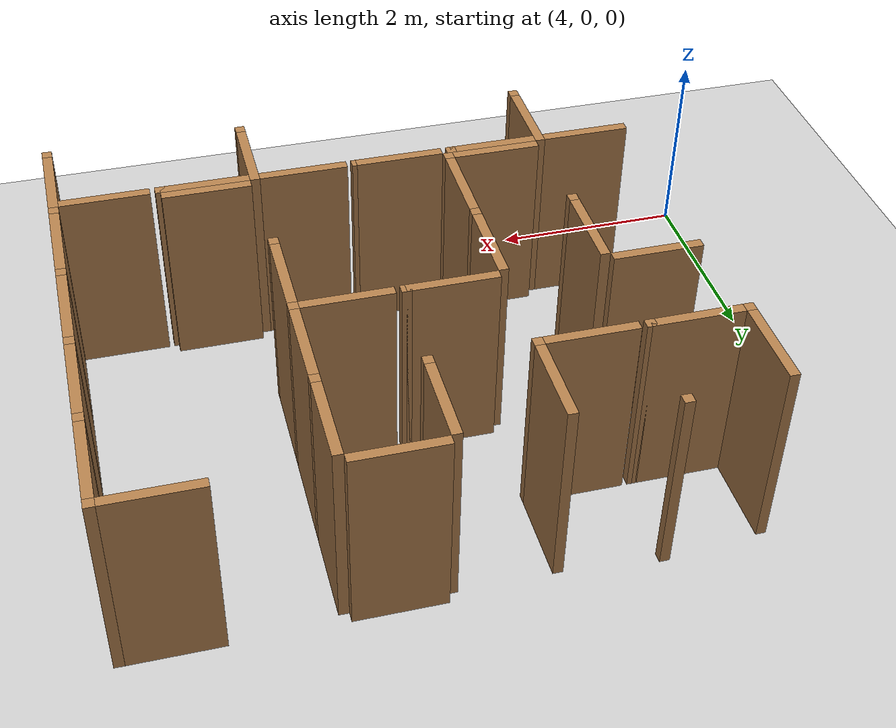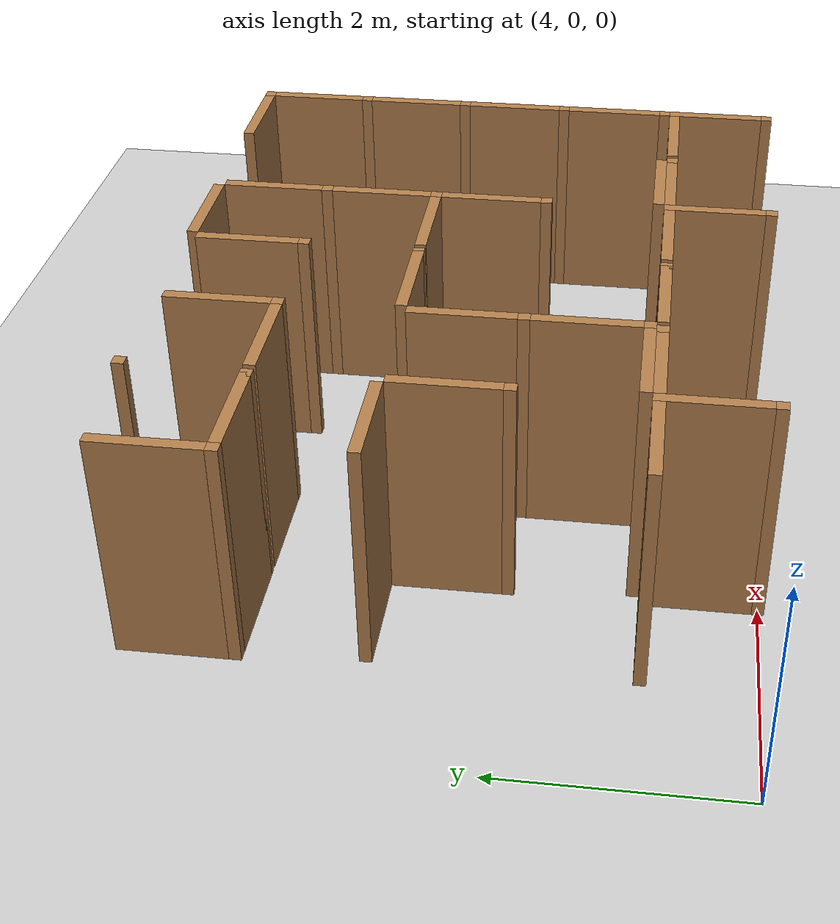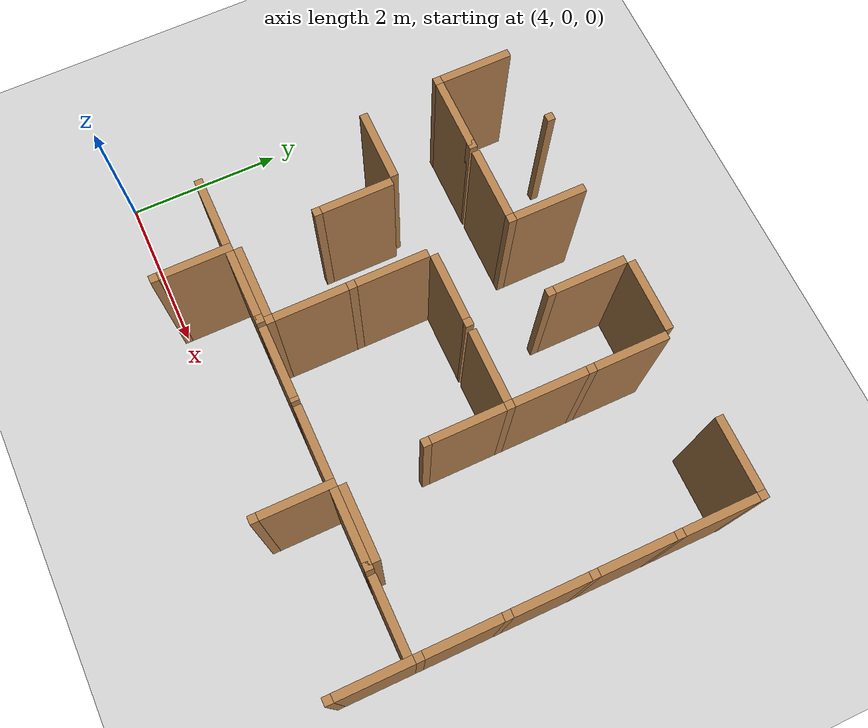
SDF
<sdf version="1.6">
 <world name="default">
  <include><uri>model://sun</uri></include>
  <model name="ground_plane">
   <static>true</static>
   <link name="link">
    <collision name="collision"><geometry><plane><size>12.0 12.0</size></plane></geometry></collision>
    <visual name="visual">
     <cast_shadows>false</cast_shadows>
     <geometry><plane><size>12.0 12.0</size></plane></geometry>
     <material>
      <script><uri>file://media/materials/scripts/gazebo.material</uri><name>Gazebo/Grey</name></script>
     </material>
    </visual>
   </link>
   <pose>6.0 6.0 0 0 0 0</pose>
  </model>
  <model name="vwall_0_6">
   <pose>6.0 0.5 1.0 0 0 0</pose>
   <link name="link">
    <collision name="collision"><geometry><box><size>0.1 0.9 2</size></box></geometry></collision>
    <visual name="visual">
     <geometry><box><size>0.1 0.9 2</size></box></geometry>
     <material>
      <script><uri>file://media/materials/scripts/gazebo.material</uri><name>Gazebo/Wood</name></script>
     </material>
    </visual>
   </link>
  </model>
  <model name="joint_6.0_0.0">
   <pose>6.0 0.0 1.0 0 0 0</pose>
   <link name="link">
    <collision name="collision"><geometry><box><size>0.1 0.1 2</size></box></geometry></collision>
    <visual name="visual">
     <geometry><box><size>0.1 0.1 2</size></box></geometry>
     <material>
      <script><uri>file://media/materials/scripts/gazebo.material</uri><name>Gazebo/Wood</name></script>
     </material>
    </visual>
   </link>
  </model>
  <model name="vwall_0_9">
   <pose>9.0 0.5 1.0 0 0 0</pose>
   <link name="link">
    <collision name="collision"><geometry><box><size>0.1 0.9 2</size></box></geometry></collision>
    <visual name="visual">
     <geometry><box><size>0.1 0.9 2</size></box></geometry>
     <material>
      <script><uri>file://media/materials/scripts/gazebo.material</uri><name>Gazebo/Wood</name></script>
     </material>
    </visual>
   </link>
  </model>
  <model name="joint_9.0_0.0">
   <pose>9.0 0.0 1.0 0 0 0</pose>
   <link name="link">
    <collision name="collision"><geometry><box><size>0.1 0.1 2</size></box></geometry></collision>
    <visual name="visual">
     <geometry><box><size>0.1 0.1 2</size></box></geometry>
     <material>
      <script><uri>file://media/materials/scripts/gazebo.material</uri><name>Gazebo/Wood</name></script>
     </material>
    </visual>
   </link>
  </model>
  <model name="vwall_0_11">
   <pose>11.0 0.5 1.0 0 0 0</pose>
   <link name="link">
    <collision name="collision"><geometry><box><size>0.1 0.9 2</size></box></geometry></collision>
    <visual name="visual">
     <geometry><box><size>0.1 0.9 2</size></box></geometry>
     <material>
      <script><uri>file://media/materials/scripts/gazebo.material</uri><name>Gazebo/Wood</name></script>
     </material>
    </visual>
   </link>
  </model>
  <model name="joint_11.0_0.0">
   <pose>11.0 0.0 1.0 0 0 0</pose>
   <link name="link">
    <collision name="collision"><geometry><box><size>0.1 0.1 2</size></box></geometry></collision>
    <visual name="visual">
     <geometry><box><size>0.1 0.1 2</size></box></geometry>
     <material>
      <script><uri>file://media/materials/scripts/gazebo.material</uri><name>Gazebo/Wood</name></script>
     </material>
    </visual>
   </link>
  </model>
  <model name="vwall_1_7">
   <pose>7.0 1.5 1.0 0 0 0</pose>
   <link name="link">
    <collision name="collision"><geometry><box><size>0.1 0.9 2</size></box></geometry></collision>
    <visual name="visual">
     <geometry><box><size>0.1 0.9 2</size></box></geometry>
     <material>
      <script><uri>file://media/materials/scripts/gazebo.material</uri><name>Gazebo/Wood</name></script>
     </material>
    </visual>
   </link>
  </model>
  <model name="joint_7.0_1.0">
   <pose>7.0 1.0 1.0 0 0 0</pose>
   <link name="link">
    <collision name="collision"><geometry><box><size>0.1 0.1 2</size></box></geometry></collision>
    <visual name="visual">
     <geometry><box><size>0.1 0.1 2</size></box></geometry>
     <material>
      <script><uri>file://media/materials/scripts/gazebo.material</uri><name>Gazebo/Wood</name></script>
     </material>
    </visual>
   </link>
  </model>
  <model name="vwall_1_11">
   <pose>11.0 1.5 1.0 0 0 0</pose>
   <link name="link">
    <collision name="collision"><geometry><box><size>0.1 0.9 2</size></box></geometry></collision>
    <visual name="visual">
     <geometry><box><size>0.1 0.9 2</size></box></geometry>
     <material>
      <script><uri>file://media/materials/scripts/gazebo.material</uri><name>Gazebo/Wood</name></script>
     </material>
    </visual>
   </link>
  </model>
  <model name="joint_11.0_1.0">
   <pose>11.0 1.0 1.0 0 0 0</pose>
   <link name="link">
    <collision name="collision"><geometry><box><size>0.1 0.1 2</size></box></geometry></collision>
    <visual name="visual">
     <geometry><box><size>0.1 0.1 2</size></box></geometry>
     <material>
      <script><uri>file://media/materials/scripts/gazebo.material</uri><name>Gazebo/Wood</name></script>
     </material>
    </visual>
   </link>
  </model>
  <model name="vwall_2_6">
   <pose>6.0 2.5 1.0 0 0 0</pose>
   <link name="link">
    <collision name="collision"><geometry><box><size>0.1 0.9 2</size></box></geometry></collision>
    <visual name="visual">
     <geometry><box><size>0.1 0.9 2</size></box></geometry>
     <material>
      <script><uri>file://media/materials/scripts/gazebo.material</uri><name>Gazebo/Wood</name></script>
     </material>
    </visual>
   </link>
  </model>
  <model name="joint_6.0_2.0">
   <pose>6.0 2.0 1.0 0 0 0</pose>
   <link name="link">
    <collision name="collision"><geometry><box><size>0.1 0.1 2</size></box></geometry></collision>
    <visual name="visual">
     <geometry><box><size>0.1 0.1 2</size></box></geometry>
     <material>
      <script><uri>file://media/materials/scripts/gazebo.material</uri><name>Gazebo/Wood</name></script>
     </material>
    </visual>
   </link>
  </model>
  <model name="vwall_2_7">
   <pose>7.0 2.5 1.0 0 0 0</pose>
   <link name="link">
    <collision name="collision"><geometry><box><size>0.1 0.9 2</size></box></geometry></collision>
    <visual name="visual">
     <geometry><box><size>0.1 0.9 2</size></box></geometry>
     <material>
      <script><uri>file://media/materials/scripts/gazebo.material</uri><name>Gazebo/Wood</name></script>
     </material>
    </visual>
   </link>
  </model>
  <model name="joint_7.0_2.0">
   <pose>7.0 2.0 1.0 0 0 0</pose>
   <link name="link">
    <collision name="collision"><geometry><box><size>0.1 0.1 2</size></box></geometry></collision>
    <visual name="visual">
     <geometry><box><size>0.1 0.1 2</size></box></geometry>
     <material>
      <script><uri>file://media/materials/scripts/gazebo.material</uri><name>Gazebo/Wood</name></script>
     </material>
    </visual>
   </link>
  </model>
  <model name="vwall_2_9">
   <pose>9.0 2.5 1.0 0 0 0</pose>
   <link name="link">
    <collision name="collision"><geometry><box><size>0.1 0.9 2</size></box></geometry></collision>
    <visual name="visual">
     <geometry><box><size>0.1 0.9 2</size></box></geometry>
     <material>
      <script><uri>file://media/materials/scripts/gazebo.material</uri><name>Gazebo/Wood</name></script>
     </material>
    </visual>
   </link>
  </model>
  <model name="joint_9.0_2.0">
   <pose>9.0 2.0 1.0 0 0 0</pose>
   <link name="link">
    <collision name="collision"><geometry><box><size>0.1 0.1 2</size></box></geometry></collision>
    <visual name="visual">
     <geometry><box><size>0.1 0.1 2</size></box></geometry>
     <material>
      <script><uri>file://media/materials/scripts/gazebo.material</uri><name>Gazebo/Wood</name></script>
     </material>
    </visual>
   </link>
  </model>
  <model name="vwall_2_11">
   <pose>11.0 2.5 1.0 0 0 0</pose>
   <link name="link">
    <collision name="collision"><geometry><box><size>0.1 0.9 2</size></box></geometry></collision>
    <visual name="visual">
     <geometry><box><size>0.1 0.9 2</size></box></geometry>
     <material>
      <script><uri>file://media/materials/scripts/gazebo.material</uri><name>Gazebo/Wood</name></script>
     </material>
    </visual>
   </link>
  </model>
  <model name="joint_11.0_2.0">
   <pose>11.0 2.0 1.0 0 0 0</pose>
   <link name="link">
    <collision name="collision"><geometry><box><size>0.1 0.1 2</size></box></geometry></collision>
    <visual name="visual">
     <geometry><box><size>0.1 0.1 2</size></box></geometry>
     <material>
      <script><uri>file://media/materials/scripts/gazebo.material</uri><name>Gazebo/Wood</name></script>
     </material>
    </visual>
   </link>
  </model>
  <model name="vwall_3_9">
   <pose>9.0 3.5 1.0 0 0 0</pose>
   <link name="link">
    <collision name="collision"><geometry><box><size>0.1 0.9 2</size></box></geometry></collision>
    <visual name="visual">
     <geometry><box><size>0.1 0.9 2</size></box></geometry>
     <material>
      <script><uri>file://media/materials/scripts/gazebo.material</uri><name>Gazebo/Wood</name></script>
     </material>
    </visual>
   </link>
  </model>
  <model name="joint_9.0_3.0">
   <pose>9.0 3.0 1.0 0 0 0</pose>
   <link name="link">
    <collision name="collision"><geometry><box><size>0.1 0.1 2</size></box></geometry></collision>
    <visual name="visual">
     <geometry><box><size>0.1 0.1 2</size></box></geometry>
     <material>
      <script><uri>file://media/materials/scripts/gazebo.material</uri><name>Gazebo/Wood</name></script>
     </material>
    </visual>
   </link>
  </model>
  <model name="vwall_3_11">
   <pose>11.0 3.5 1.0 0 0 0</pose>
   <link name="link">
    <collision name="collision"><geometry><box><size>0.1 0.9 2</size></box></geometry></collision>
    <visual name="visual">
     <geometry><box><size>0.1 0.9 2</size></box></geometry>
     <material>
      <script><uri>file://media/materials/scripts/gazebo.material</uri><name>Gazebo/Wood</name></script>
     </material>
    </visual>
   </link>
  </model>
  <model name="joint_11.0_3.0">
   <pose>11.0 3.0 1.0 0 0 0</pose>
   <link name="link">
    <collision name="collision"><geometry><box><size>0.1 0.1 2</size></box></geometry></collision>
    <visual name="visual">
     <geometry><box><size>0.1 0.1 2</size></box></geometry>
     <material>
      <script><uri>file://media/materials/scripts/gazebo.material</uri><name>Gazebo/Wood</name></script>
     </material>
    </visual>
   </link>
  </model>
  <model name="vwall_4_5">
   <pose>5.0 4.5 1.0 0 0 0</pose>
   <link name="link">
    <collision name="collision"><geometry><box><size>0.1 0.9 2</size></box></geometry></collision>
    <visual name="visual">
     <geometry><box><size>0.1 0.9 2</size></box></geometry>
     <material>
      <script><uri>file://media/materials/scripts/gazebo.material</uri><name>Gazebo/Wood</name></script>
     </material>
    </visual>
   </link>
  </model>
  <model name="joint_5.0_4.0">
   <pose>5.0 4.0 1.0 0 0 0</pose>
   <link name="link">
    <collision name="collision"><geometry><box><size>0.1 0.1 2</size></box></geometry></collision>
    <visual name="visual">
     <geometry><box><size>0.1 0.1 2</size></box></geometry>
     <material>
      <script><uri>file://media/materials/scripts/gazebo.material</uri><name>Gazebo/Wood</name></script>
     </material>
    </visual>
   </link>
  </model>
  <model name="vwall_4_7">
   <pose>7.0 4.5 1.0 0 0 0</pose>
   <link name="link">
    <collision name="collision"><geometry><box><size>0.1 0.9 2</size></box></geometry></collision>
    <visual name="visual">
     <geometry><box><size>0.1 0.9 2</size></box></geometry>
     <material>
      <script><uri>file://media/materials/scripts/gazebo.material</uri><name>Gazebo/Wood</name></script>
     </material>
    </visual>
   </link>
  </model>
  <model name="joint_7.0_4.0">
   <pose>7.0 4.0 1.0 0 0 0</pose>
   <link name="link">
    <collision name="collision"><geometry><box><size>0.1 0.1 2</size></box></geometry></collision>
    <visual name="visual">
     <geometry><box><size>0.1 0.1 2</size></box></geometry>
     <material>
      <script><uri>file://media/materials/scripts/gazebo.material</uri><name>Gazebo/Wood</name></script>
     </material>
    </visual>
   </link>
  </model>
  <model name="vwall_4_8">
   <pose>8.0 4.5 1.0 0 0 0</pose>
   <link name="link">
    <collision name="collision"><geometry><box><size>0.1 0.9 2</size></box></geometry></collision>
    <visual name="visual">
     <geometry><box><size>0.1 0.9 2</size></box></geometry>
     <material>
      <script><uri>file://media/materials/scripts/gazebo.material</uri><name>Gazebo/Wood</name></script>
     </material>
    </visual>
   </link>
  </model>
  <model name="joint_8.0_4.0">
   <pose>8.0 4.0 1.0 0 0 0</pose>
   <link name="link">
    <collision name="collision"><geometry><box><size>0.1 0.1 2</size></box></geometry></collision>
    <visual name="visual">
     <geometry><box><size>0.1 0.1 2</size></box></geometry>
     <material>
      <script><uri>file://media/materials/scripts/gazebo.material</uri><name>Gazebo/Wood</name></script>
     </material>
    </visual>
   </link>
  </model>
  <model name="vwall_4_9">
   <pose>9.0 4.5 1.0 0 0 0</pose>
   <link name="link">
    <collision name="collision"><geometry><box><size>0.1 0.9 2</size></box></geometry></collision>
    <visual name="visual">
     <geometry><box><size>0.1 0.9 2</size></box></geometry>
     <material>
      <script><uri>file://media/materials/scripts/gazebo.material</uri><name>Gazebo/Wood</name></script>
     </material>
    </visual>
   </link>
  </model>
  <model name="joint_9.0_4.0">
   <pose>9.0 4.0 1.0 0 0 0</pose>
   <link name="link">
    <collision name="collision"><geometry><box><size>0.1 0.1 2</size></box></geometry></collision>
    <visual name="visual">
     <geometry><box><size>0.1 0.1 2</size></box></geometry>
     <material>
      <script><uri>file://media/materials/scripts/gazebo.material</uri><name>Gazebo/Wood</name></script>
     </material>
    </visual>
   </link>
  </model>
  <model name="vwall_4_11">
   <pose>11.0 4.5 1.0 0 0 0</pose>
   <link name="link">
    <collision name="collision"><geometry><box><size>0.1 0.9 2</size></box></geometry></collision>
    <visual name="visual">
     <geometry><box><size>0.1 0.9 2</size></box></geometry>
     <material>
      <script><uri>file://media/materials/scripts/gazebo.material</uri><name>Gazebo/Wood</name></script>
     </material>
    </visual>
   </link>
  </model>
  <model name="joint_11.0_4.0">
   <pose>11.0 4.0 1.0 0 0 0</pose>
   <link name="link">
    <collision name="collision"><geometry><box><size>0.1 0.1 2</size></box></geometry></collision>
    <visual name="visual">
     <geometry><box><size>0.1 0.1 2</size></box></geometry>
     <material>
      <script><uri>file://media/materials/scripts/gazebo.material</uri><name>Gazebo/Wood</name></script>
     </material>
    </visual>
   </link>
  </model>
  <model name="joint_6.0_5.0">
   <pose>6.0 5.0 1.0 0 0 0</pose>
   <link name="link">
    <collision name="collision"><geometry><box><size>0.1 0.1 2</size></box></geometry></collision>
    <visual name="visual">
     <geometry><box><size>0.1 0.1 2</size></box></geometry>
     <material>
      <script><uri>file://media/materials/scripts/gazebo.material</uri><name>Gazebo/Wood</name></script>
     </material>
    </visual>
   </link>
  </model>
  <model name="joint_11.0_5.0">
   <pose>11.0 5.0 1.0 0 0 0</pose>
   <link name="link">
    <collision name="collision"><geometry><box><size>0.1 0.1 2</size></box></geometry></collision>
    <visual name="visual">
     <geometry><box><size>0.1 0.1 2</size></box></geometry>
     <material>
      <script><uri>file://media/materials/scripts/gazebo.material</uri><name>Gazebo/Wood</name></script>
     </material>
    </visual>
   </link>
  </model>
  <model name="hwall_0_5">
   <pose>5.5 0.9 1.0 0 0 0</pose>
   <link name="link">
    <collision name="collision"><geometry><box><size>0.9 0.1 2</size></box></geometry></collision>
    <visual name="visual">
     <geometry><box><size>0.9 0.1 2</size></box></geometry>
     <material>
      <script><uri>file://media/materials/scripts/gazebo.material</uri><name>Gazebo/Wood</name></script>
     </material>
    </visual>
   </link>
  </model>
  <model name="hwall_0_6">
   <pose>6.5 0.9 1.0 0 0 0</pose>
   <link name="link">
    <collision name="collision"><geometry><box><size>0.9 0.1 2</size></box></geometry></collision>
    <visual name="visual">
     <geometry><box><size>0.9 0.1 2</size></box></geometry>
     <material>
      <script><uri>file://media/materials/scripts/gazebo.material</uri><name>Gazebo/Wood</name></script>
     </material>
    </visual>
   </link>
  </model>
  <model name="joint_6.95_0.9">
   <pose>6.95 0.9 1.0 0 0 0</pose>
   <link name="link">
    <collision name="collision"><geometry><box><size>0.1 0.1 2</size></box></geometry></collision>
    <visual name="visual">
     <geometry><box><size>0.1 0.1 2</size></box></geometry>
     <material>
      <script><uri>file://media/materials/scripts/gazebo.material</uri><name>Gazebo/Wood</name></script>
     </material>
    </visual>
   </link>
  </model>
  <model name="hwall_0_7">
   <pose>7.5 0.9 1.0 0 0 0</pose>
   <link name="link">
    <collision name="collision"><geometry><box><size>0.9 0.1 2</size></box></geometry></collision>
    <visual name="visual">
     <geometry><box><size>0.9 0.1 2</size></box></geometry>
     <material>
      <script><uri>file://media/materials/scripts/gazebo.material</uri><name>Gazebo/Wood</name></script>
     </material>
    </visual>
   </link>
  </model>
  <model name="joint_7.95_0.9">
   <pose>7.95 0.9 1.0 0 0 0</pose>
   <link name="link">
    <collision name="collision"><geometry><box><size>0.1 0.1 2</size></box></geometry></collision>
    <visual name="visual">
     <geometry><box><size>0.1 0.1 2</size></box></geometry>
     <material>
      <script><uri>file://media/materials/scripts/gazebo.material</uri><name>Gazebo/Wood</name></script>
     </material>
    </visual>
   </link>
  </model>
  <model name="hwall_0_8">
   <pose>8.5 0.9 1.0 0 0 0</pose>
   <link name="link">
    <collision name="collision"><geometry><box><size>0.9 0.1 2</size></box></geometry></collision>
    <visual name="visual">
     <geometry><box><size>0.9 0.1 2</size></box></geometry>
     <material>
      <script><uri>file://media/materials/scripts/gazebo.material</uri><name>Gazebo/Wood</name></script>
     </material>
    </visual>
   </link>
  </model>
  <model name="hwall_0_9">
   <pose>9.5 0.9 1.0 0 0 0</pose>
   <link name="link">
    <collision name="collision"><geometry><box><size>0.9 0.1 2</size></box></geometry></collision>
    <visual name="visual">
     <geometry><box><size>0.9 0.1 2</size></box></geometry>
     <material>
      <script><uri>file://media/materials/scripts/gazebo.material</uri><name>Gazebo/Wood</name></script>
     </material>
    </visual>
   </link>
  </model>
  <model name="joint_9.95_0.9">
   <pose>9.95 0.9 1.0 0 0 0</pose>
   <link name="link">
    <collision name="collision"><geometry><box><size>0.1 0.1 2</size></box></geometry></collision>
    <visual name="visual">
     <geometry><box><size>0.1 0.1 2</size></box></geometry>
     <material>
      <script><uri>file://media/materials/scripts/gazebo.material</uri><name>Gazebo/Wood</name></script>
     </material>
    </visual>
   </link>
  </model>
  <model name="hwall_0_10">
   <pose>10.5 0.9 1.0 0 0 0</pose>
   <link name="link">
    <collision name="collision"><geometry><box><size>0.9 0.1 2</size></box></geometry></collision>
    <visual name="visual">
     <geometry><box><size>0.9 0.1 2</size></box></geometry>
     <material>
      <script><uri>file://media/materials/scripts/gazebo.material</uri><name>Gazebo/Wood</name></script>
     </material>
    </visual>
   </link>
  </model>
  <model name="hwall_1_6">
   <pose>6.5 1.0 1.0 0 0 0</pose>
   <link name="link">
    <collision name="collision"><geometry><box><size>0.9 0.1 2</size></box></geometry></collision>
    <visual name="visual">
     <geometry><box><size>0.9 0.1 2</size></box></geometry>
     <material>
      <script><uri>file://media/materials/scripts/gazebo.material</uri><name>Gazebo/Wood</name></script>
     </material>
    </visual>
   </link>
  </model>
  <model name="hwall_1_9">
   <pose>9.5 1.0 1.0 0 0 0</pose>
   <link name="link">
    <collision name="collision"><geometry><box><size>0.9 0.1 2</size></box></geometry></collision>
    <visual name="visual">
     <geometry><box><size>0.9 0.1 2</size></box></geometry>
     <material>
      <script><uri>file://media/materials/scripts/gazebo.material</uri><name>Gazebo/Wood</name></script>
     </material>
    </visual>
   </link>
  </model>
  <model name="hwall_3_5">
   <pose>5.5 3.0 1.0 0 0 0</pose>
   <link name="link">
    <collision name="collision"><geometry><box><size>0.9 0.1 2</size></box></geometry></collision>
    <visual name="visual">
     <geometry><box><size>0.9 0.1 2</size></box></geometry>
     <material>
      <script><uri>file://media/materials/scripts/gazebo.material</uri><name>Gazebo/Wood</name></script>
     </material>
    </visual>
   </link>
  </model>
  <model name="hwall_3_7">
   <pose>7.5 3.0 1.0 0 0 0</pose>
   <link name="link">
    <collision name="collision"><geometry><box><size>0.9 0.1 2</size></box></geometry></collision>
    <visual name="visual">
     <geometry><box><size>0.9 0.1 2</size></box></geometry>
     <material>
      <script><uri>file://media/materials/scripts/gazebo.material</uri><name>Gazebo/Wood</name></script>
     </material>
    </visual>
   </link>
  </model>
  <model name="joint_7.95_3.0">
   <pose>7.95 3.0 1.0 0 0 0</pose>
   <link name="link">
    <collision name="collision"><geometry><box><size>0.1 0.1 2</size></box></geometry></collision>
    <visual name="visual">
     <geometry><box><size>0.1 0.1 2</size></box></geometry>
     <material>
      <script><uri>file://media/materials/scripts/gazebo.material</uri><name>Gazebo/Wood</name></script>
     </material>
    </visual>
   </link>
  </model>
  <model name="hwall_3_8">
   <pose>8.5 3.0 1.0 0 0 0</pose>
   <link name="link">
    <collision name="collision"><geometry><box><size>0.9 0.1 2</size></box></geometry></collision>
    <visual name="visual">
     <geometry><box><size>0.9 0.1 2</size></box></geometry>
     <material>
      <script><uri>file://media/materials/scripts/gazebo.material</uri><name>Gazebo/Wood</name></script>
     </material>
    </visual>
   </link>
  </model>
  <model name="hwall_4_5">
   <pose>5.5 4.0 1.0 0 0 0</pose>
   <link name="link">
    <collision name="collision"><geometry><box><size>0.9 0.1 2</size></box></geometry></collision>
    <visual name="visual">
     <geometry><box><size>0.9 0.1 2</size></box></geometry>
     <material>
      <script><uri>file://media/materials/scripts/gazebo.material</uri><name>Gazebo/Wood</name></script>
     </material>
    </visual>
   </link>
  </model>
  <model name="joint_5.95_4.0">
   <pose>5.95 4.0 1.0 0 0 0</pose>
   <link name="link">
    <collision name="collision"><geometry><box><size>0.1 0.1 2</size></box></geometry></collision>
    <visual name="visual">
     <geometry><box><size>0.1 0.1 2</size></box></geometry>
     <material>
      <script><uri>file://media/materials/scripts/gazebo.material</uri><name>Gazebo/Wood</name></script>
     </material>
    </visual>
   </link>
  </model>
  <model name="hwall_4_6">
   <pose>6.5 4.0 1.0 0 0 0</pose>
   <link name="link">
    <collision name="collision"><geometry><box><size>0.9 0.1 2</size></box></geometry></collision>
    <visual name="visual">
     <geometry><box><size>0.9 0.1 2</size></box></geometry>
     <material>
      <script><uri>file://media/materials/scripts/gazebo.material</uri><name>Gazebo/Wood</name></script>
     </material>
    </visual>
   </link>
  </model>
  <model name="hwall_5_8">
   <pose>8.5 5.0 1.0 0 0 0</pose>
   <link name="link">
    <collision name="collision"><geometry><box><size>0.9 0.1 2</size></box></geometry></collision>
    <visual name="visual">
     <geometry><box><size>0.9 0.1 2</size></box></geometry>
     <material>
      <script><uri>file://media/materials/scripts/gazebo.material</uri><name>Gazebo/Wood</name></script>
     </material>
    </visual>
   </link>
  </model>
  <model name="hwall_5_10">
   <pose>10.5 5.0 1.0 0 0 0</pose>
   <link name="link">
    <collision name="collision"><geometry><box><size>0.9 0.1 2</size></box></geometry></collision>
    <visual name="visual">
     <geometry><box><size>0.9 0.1 2</size></box></geometry>
     <material>
      <script><uri>file://media/materials/scripts/gazebo.material</uri><name>Gazebo/Wood</name></script>
     </material>
    </visual>
   </link>
  </model>
 </world>
</sdf>
